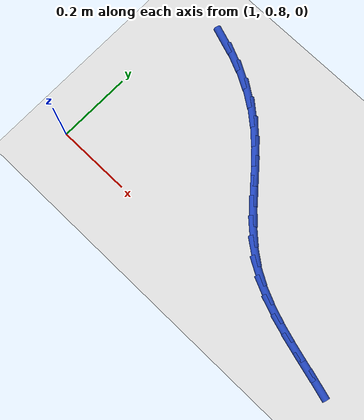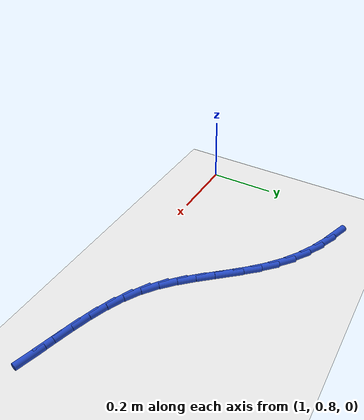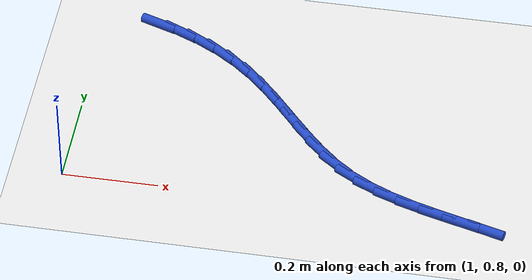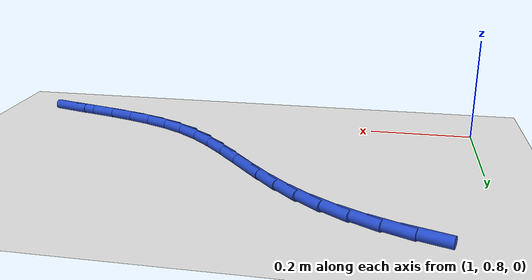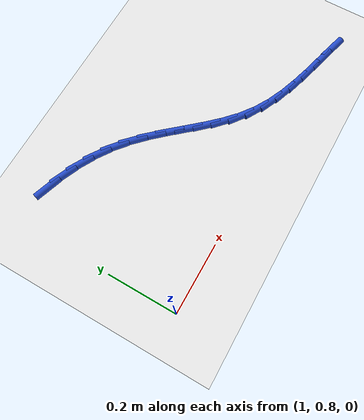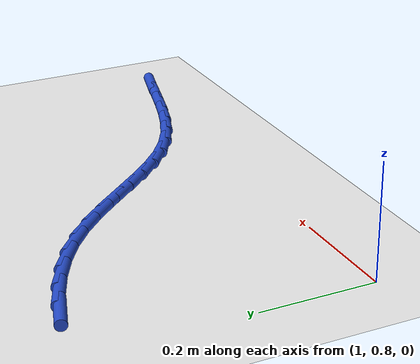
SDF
<sdf version="1.6">
 <world name="default">
  <model name="ground_plane">
   <static>1</static>
   <link name="link">
    <collision name="collision">
     <geometry><plane><normal>0 0 1</normal><size>100 100</size></plane></geometry>
     <surface><friction><ode><mu>100</mu><mu2>50</mu2></ode></friction></surface>
    </collision>
    <visual name="visual">
     <cast_shadows>0</cast_shadows>
     <geometry><plane><normal>0 0 1</normal><size>100 100</size></plane></geometry>
     <material>
      <script><uri>file://media/materials/scripts/gazebo.material</uri><name>Gazebo/WhiteGlow</name></script>
     </material>
    </visual>
   </link>
  </model>
  <model name="line">
   <link name="link_37">
    <pose>1.1147482617332283 1.2614643546870035 0.01 0 1.57 -0.3298079504636405</pose>
    <collision name="collision">
     <geometry><cylinder><radius>0.01</radius><length>0.08</length></cylinder></geometry>
    </collision>
    <visual name="visual">
     <material>
      <script><name>Gazebo/Blue</name><uri>file://media/materials/scripts/gazebo.material</uri></script>
     </material>
     <geometry><cylinder><radius>0.01</radius><length>0.08</length></cylinder></geometry>
    </visual>
   </link>
   <link name="link_38">
    <pose>1.1649875466777315 1.2442669299746523 0.01 0 1.57 -0.4160630637040997</pose>
    <collision name="collision">
     <geometry><cylinder><radius>0.01</radius><length>0.08</length></cylinder></geometry>
    </collision>
    <visual name="visual">
     <material>
      <script><name>Gazebo/Blue</name><uri>file://media/materials/scripts/gazebo.material</uri></script>
     </material>
     <geometry><cylinder><radius>0.01</radius><length>0.08</length></cylinder></geometry>
    </visual>
   </link>
   <link name="link_39">
    <pose>1.2133010365112664 1.2229191921565914 0.01 0 1.57 -0.5062192141775961</pose>
    <collision name="collision">
     <geometry><cylinder><radius>0.01</radius><length>0.08</length></cylinder></geometry>
    </collision>
    <visual name="visual">
     <material>
      <script><name>Gazebo/Blue</name><uri>file://media/materials/scripts/gazebo.material</uri></script>
     </material>
     <geometry><cylinder><radius>0.01</radius><length>0.08</length></cylinder></geometry>
    </visual>
   </link>
   <link name="link_40">
    <pose>1.2591999618879477 1.1974725781916893 0.01 0 1.57 -0.6012534725056153</pose>
    <collision name="collision">
     <geometry><cylinder><radius>0.01</radius><length>0.08</length></cylinder></geometry>
    </collision>
    <visual name="visual">
     <material>
      <script><name>Gazebo/Blue</name><uri>file://media/materials/scripts/gazebo.material</uri></script>
     </material>
     <geometry><cylinder><radius>0.01</radius><length>0.08</length></cylinder></geometry>
    </visual>
   </link>
   <link name="link_41">
    <pose>1.3021955534618916 1.167978525038814 0.01 0 1.57 -0.7004386972823281</pose>
    <collision name="collision">
     <geometry><cylinder><radius>0.01</radius><length>0.08</length></cylinder></geometry>
    </collision>
    <visual name="visual">
     <material>
      <script><name>Gazebo/Blue</name><uri>file://media/materials/scripts/gazebo.material</uri></script>
     </material>
     <geometry><cylinder><radius>0.01</radius><length>0.08</length></cylinder></geometry>
    </visual>
   </link>
   <link name="link_42">
    <pose>1.3418604926948359 1.1345394506483903 0.01 0 1.57 -0.7839051969775488</pose>
    <collision name="collision">
     <geometry><cylinder><radius>0.01</radius><length>0.08</length></cylinder></geometry>
    </collision>
    <visual name="visual">
     <material>
      <script><name>Gazebo/Blue</name><uri>file://media/materials/scripts/gazebo.material</uri></script>
     </material>
     <geometry><cylinder><radius>0.01</radius><length>0.08</length></cylinder></geometry>
    </visual>
   </link>
   <link name="link_43">
    <pose>1.3785786577234946 1.0979307602339228 0.01 0 1.57 -0.837206322669016</pose>
    <collision name="collision">
     <geometry><cylinder><radius>0.01</radius><length>0.08</length></cylinder></geometry>
    </collision>
    <visual name="visual">
     <material>
      <script><name>Gazebo/Blue</name><uri>file://media/materials/scripts/gazebo.material</uri></script>
     </material>
     <geometry><cylinder><radius>0.01</radius><length>0.08</length></cylinder></geometry>
    </visual>
   </link>
   <link name="link_44">
    <pose>1.413307259133098 1.0594035086845932 0.01 0 1.57 -0.8603867606246717</pose>
    <collision name="collision">
     <geometry><cylinder><radius>0.01</radius><length>0.08</length></cylinder></geometry>
    </collision>
    <visual name="visual">
     <material>
      <script><name>Gazebo/Blue</name><uri>file://media/materials/scripts/gazebo.material</uri></script>
     </material>
     <geometry><cylinder><radius>0.01</radius><length>0.08</length></cylinder></geometry>
    </visual>
   </link>
   <link name="link_45">
    <pose>1.4470155820393797 1.0202187681954809 0.01 0 1.57 -0.8534536272205215</pose>
    <collision name="collision">
     <geometry><cylinder><radius>0.01</radius><length>0.08</length></cylinder></geometry>
    </collision>
    <visual name="visual">
     <material>
      <script><name>Gazebo/Blue</name><uri>file://media/materials/scripts/gazebo.material</uri></script>
     </material>
     <geometry><cylinder><radius>0.01</radius><length>0.08</length></cylinder></geometry>
    </visual>
   </link>
   <link name="link_46">
    <pose>1.4806729115580728 0.9816376109616659 0.01 0 1.57 -0.8154188340893556</pose>
    <collision name="collision">
     <geometry><cylinder><radius>0.01</radius><length>0.08</length></cylinder></geometry>
    </collision>
    <visual name="visual">
     <material>
      <script><name>Gazebo/Blue</name><uri>file://media/materials/scripts/gazebo.material</uri></script>
     </material>
     <geometry><cylinder><radius>0.01</radius><length>0.08</length></cylinder></geometry>
    </visual>
   </link>
   <link name="link_47">
    <pose>1.515248532804911 0.9449211091782278 0.01 0 1.57 -0.7444181057103532</pose>
    <collision name="collision">
     <geometry><cylinder><radius>0.01</radius><length>0.08</length></cylinder></geometry>
    </collision>
    <visual name="visual">
     <material>
      <script><name>Gazebo/Blue</name><uri>file://media/materials/scripts/gazebo.material</uri></script>
     </material>
     <geometry><cylinder><radius>0.01</radius><length>0.08</length></cylinder></geometry>
    </visual>
   </link>
   <link name="link_48">
    <pose>1.5517117308956265 0.9113303350402453 0.01 0 1.57 -0.6389495916548086</pose>
    <collision name="collision">
     <geometry><cylinder><radius>0.01</radius><length>0.08</length></cylinder></geometry>
    </collision>
    <visual name="visual">
     <material>
      <script><name>Gazebo/Blue</name><uri>file://media/materials/scripts/gazebo.material</uri></script>
     </material>
     <geometry><cylinder><radius>0.01</radius><length>0.08</length></cylinder></geometry>
    </visual>
   </link>
   <link name="link_49">
    <pose>1.5910283552620792 0.8821215272711782 0.01 0 1.57 -0.5170822054858782</pose>
    <collision name="collision">
     <geometry><cylinder><radius>0.01</radius><length>0.08</length></cylinder></geometry>
    </collision>
    <visual name="visual">
     <material>
      <script><name>Gazebo/Blue</name><uri>file://media/materials/scripts/gazebo.material</uri></script>
     </material>
     <geometry><cylinder><radius>0.01</radius><length>0.08</length></cylinder></geometry>
    </visual>
   </link>
   <link name="link_50">
    <pose>1.6336780470789674 0.8578669053720684 0.01 0 1.57 -0.41641253473611034</pose>
    <collision name="collision">
     <geometry><cylinder><radius>0.01</radius><length>0.08</length></cylinder></geometry>
    </collision>
    <visual name="visual">
     <material>
      <script><name>Gazebo/Blue</name><uri>file://media/materials/scripts/gazebo.material</uri></script>
     </material>
     <geometry><cylinder><radius>0.01</radius><length>0.08</length></cylinder></geometry>
    </visual>
   </link>
   <link name="link_51">
    <pose>1.6791556487712713 0.8377532305241994 0.01 0 1.57 -0.341616137472867</pose>
    <collision name="collision">
     <geometry><cylinder><radius>0.01</radius><length>0.08</length></cylinder></geometry>
    </collision>
    <visual name="visual">
     <material>
      <script><name>Gazebo/Blue</name><uri>file://media/materials/scripts/gazebo.material</uri></script>
     </material>
     <geometry><cylinder><radius>0.01</radius><length>0.08</length></cylinder></geometry>
    </visual>
   </link>
   <link name="link_52">
    <pose>1.7268369891548891 0.8207998303140017 0.01 0 1.57 -0.29137346187953506</pose>
    <collision name="collision">
     <geometry><cylinder><radius>0.01</radius><length>0.08</length></cylinder></geometry>
    </collision>
    <visual name="visual">
     <material>
      <script><name>Gazebo/Blue</name><uri>file://media/materials/scripts/gazebo.material</uri></script>
     </material>
     <geometry><cylinder><radius>0.01</radius><length>0.08</length></cylinder></geometry>
    </visual>
   </link>
   <link name="link_53">
    <pose>1.7760978970457177 0.8060260323279063 0.01 0 1.57 -0.264017431589229</pose>
    <collision name="collision">
     <geometry><cylinder><radius>0.01</radius><length>0.08</length></cylinder></geometry>
    </collision>
    <visual name="visual">
     <material>
      <script><name>Gazebo/Blue</name><uri>file://media/materials/scripts/gazebo.material</uri></script>
     </material>
     <geometry><cylinder><radius>0.01</radius><length>0.08</length></cylinder></geometry>
    </visual>
   </link>
   <link name="link_54">
    <pose>1.8263142012596543 0.7924511641523437 0.01 0 1.57 -0.2583342014483242</pose>
    <collision name="collision">
     <geometry><cylinder><radius>0.01</radius><length>0.08</length></cylinder></geometry>
    </collision>
    <visual name="visual">
     <material>
      <script><name>Gazebo/Blue</name><uri>file://media/materials/scripts/gazebo.material</uri></script>
     </material>
     <geometry><cylinder><radius>0.01</radius><length>0.08</length></cylinder></geometry>
    </visual>
   </link>
   <link name="link_55">
    <pose>1.8768617306125959 0.7790945533737457 0.01 0 1.57 -0.2738894316777096</pose>
    <collision name="collision">
     <geometry><cylinder><radius>0.01</radius><length>0.08</length></cylinder></geometry>
    </collision>
    <visual name="visual">
     <material>
      <script><name>Gazebo/Blue</name><uri>file://media/materials/scripts/gazebo.material</uri></script>
     </material>
     <geometry><cylinder><radius>0.01</radius><length>0.08</length></cylinder></geometry>
    </visual>
   </link>
  </model>
 </world>
</sdf>
